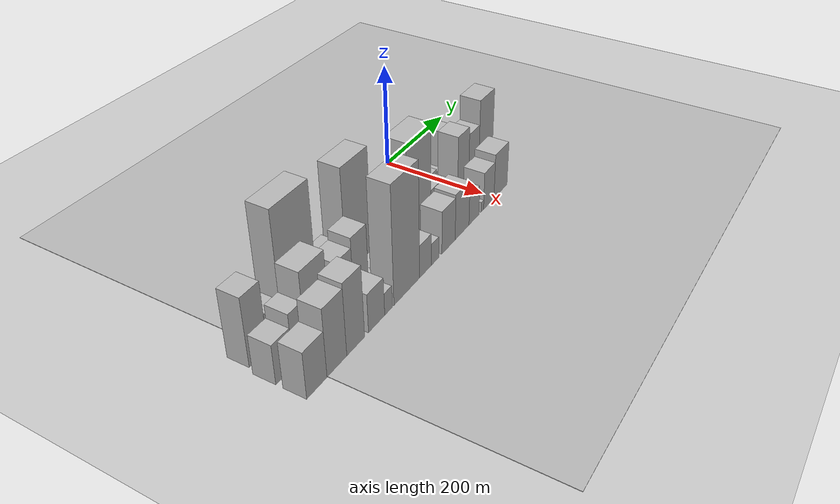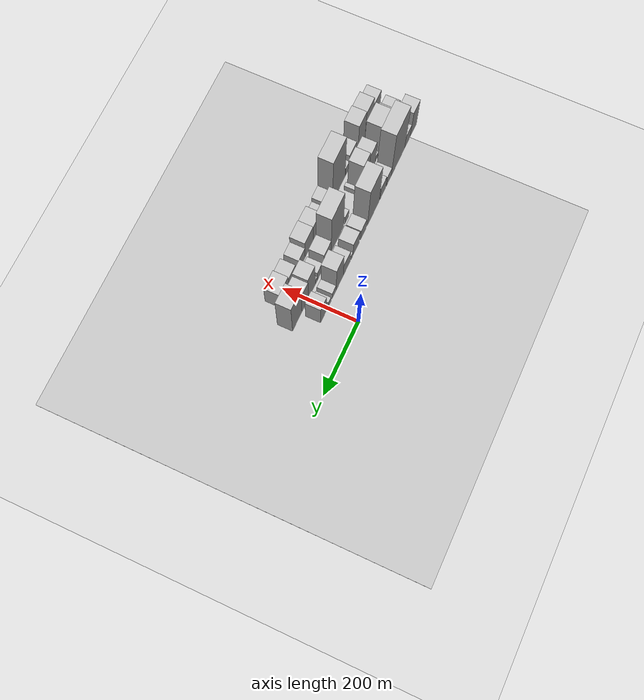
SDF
<sdf version="1.6">
 <world name="default">
  <include><name>ground_plane_1</name><uri>model://HANNAS_ground_plane</uri></include>
  <include>
   <name>ground_plane_2</name>
   <uri>model://HANNAS_ground_plane</uri>
   <pose>100 0 0  0 0 0</pose>
  </include>
  <model name="building_1">
   <static>1</static>
   <pose>100.0000 -520.6424 0 0.000000 0.000000 0.000000</pose>
   <link name="link">
    <pose>0 0 63.00 0 0 0</pose>
    <collision name="collision"><geometry><box><size>40.0000 40.7153 126.0000</size></box></geometry></collision>
    <visual name="visual">
     <cast_shadows>0</cast_shadows>
     <geometry><box><size>40.0000 40.7153 126.0000</size></box></geometry>
     <material>
      <script>
       <uri>model://HANNAS_wall/materials/scripts</uri>
       <uri>model://HANNAS_wall/materials/textures</uri>
       <name>vrc/HANNAS_wall</name>
      </script>
     </material>
    </visual>
   </link>
  </model>
  <model name="building_2">
   <static>1</static>
   <pose>100.0000 -482.6814 0 0.000000 0.000000 0.000000</pose>
   <link name="link">
    <pose>0 0 33.00 0 0 0</pose>
    <collision name="collision"><geometry><box><size>40.0000 35.2066 66.0000</size></box></geometry></collision>
    <visual name="visual">
     <cast_shadows>0</cast_shadows>
     <geometry><box><size>40.0000 35.2066 66.0000</size></box></geometry>
     <material>
      <script>
       <uri>model://HANNAS_wall/materials/scripts</uri>
       <uri>model://HANNAS_wall/materials/textures</uri>
       <name>vrc/HANNAS_wall</name>
      </script>
     </material>
    </visual>
   </link>
  </model>
  <model name="building_3">
   <static>1</static>
   <pose>100.0000 -422.6108 0 0.000000 0.000000 0.000000</pose>
   <link name="link">
    <pose>0 0 111.00 0 0 0</pose>
    <collision name="collision"><geometry><box><size>40.0000 84.9346 222.0000</size></box></geometry></collision>
    <visual name="visual">
     <cast_shadows>0</cast_shadows>
     <geometry><box><size>40.0000 84.9346 222.0000</size></box></geometry>
     <material>
      <script>
       <uri>model://HANNAS_wall/materials/scripts</uri>
       <uri>model://HANNAS_wall/materials/textures</uri>
       <name>vrc/HANNAS_wall</name>
      </script>
     </material>
    </visual>
   </link>
  </model>
  <model name="building_4">
   <static>1</static>
   <pose>100.0000 -365.6427 0 0.000000 0.000000 0.000000</pose>
   <link name="link">
    <pose>0 0 25.50 0 0 0</pose>
    <collision name="collision"><geometry><box><size>40.0000 29.0015 51.0000</size></box></geometry></collision>
    <visual name="visual">
     <cast_shadows>0</cast_shadows>
     <geometry><box><size>40.0000 29.0015 51.0000</size></box></geometry>
     <material>
      <script>
       <uri>model://HANNAS_wall/materials/scripts</uri>
       <uri>model://HANNAS_wall/materials/textures</uri>
       <name>vrc/HANNAS_wall</name>
      </script>
     </material>
    </visual>
   </link>
  </model>
  <model name="building_5">
   <static>1</static>
   <pose>100.0000 -328.3756 0 0.000000 0.000000 0.000000</pose>
   <link name="link">
    <pose>0 0 33.00 0 0 0</pose>
    <collision name="collision"><geometry><box><size>40.0000 35.5327 66.0000</size></box></geometry></collision>
    <visual name="visual">
     <cast_shadows>0</cast_shadows>
     <geometry><box><size>40.0000 35.5327 66.0000</size></box></geometry>
     <material>
      <script>
       <uri>model://HANNAS_wall/materials/scripts</uri>
       <uri>model://HANNAS_wall/materials/textures</uri>
       <name>vrc/HANNAS_wall</name>
      </script>
     </material>
    </visual>
   </link>
  </model>
  <model name="building_6">
   <static>1</static>
   <pose>100.0000 -270.0460 0 0.000000 0.000000 0.000000</pose>
   <link name="link">
    <pose>0 0 99.00 0 0 0</pose>
    <collision name="collision"><geometry><box><size>40.0000 71.1264 198.0000</size></box></geometry></collision>
    <visual name="visual">
     <cast_shadows>0</cast_shadows>
     <geometry><box><size>40.0000 71.1264 198.0000</size></box></geometry>
     <material>
      <script>
       <uri>model://HANNAS_wall/materials/scripts</uri>
       <uri>model://HANNAS_wall/materials/textures</uri>
       <name>vrc/HANNAS_wall</name>
      </script>
     </material>
    </visual>
   </link>
  </model>
  <model name="building_7">
   <static>1</static>
   <pose>100.0000 -209.6957 0 0.000000 0.000000 0.000000</pose>
   <link name="link">
    <pose>0 0 28.50 0 0 0</pose>
    <collision name="collision"><geometry><box><size>40.0000 33.5742 57.0000</size></box></geometry></collision>
    <visual name="visual">
     <cast_shadows>0</cast_shadows>
     <geometry><box><size>40.0000 33.5742 57.0000</size></box></geometry>
     <material>
      <script>
       <uri>model://HANNAS_wall/materials/scripts</uri>
       <uri>model://HANNAS_wall/materials/textures</uri>
       <name>vrc/HANNAS_wall</name>
      </script>
     </material>
    </visual>
   </link>
  </model>
  <model name="building_8">
   <static>1</static>
   <pose>100.0000 -166.0464 0 0.000000 0.000000 0.000000</pose>
   <link name="link">
    <pose>0 0 36.00 0 0 0</pose>
    <collision name="collision"><geometry><box><size>40.0000 37.7243 72.0000</size></box></geometry></collision>
    <visual name="visual">
     <cast_shadows>0</cast_shadows>
     <geometry><box><size>40.0000 37.7243 72.0000</size></box></geometry>
     <material>
      <script>
       <uri>model://HANNAS_wall/materials/scripts</uri>
       <uri>model://HANNAS_wall/materials/textures</uri>
       <name>vrc/HANNAS_wall</name>
      </script>
     </material>
    </visual>
   </link>
  </model>
  <model name="building_9">
   <static>1</static>
   <pose>100.0000 -141.8162 0 0.000000 0.000000 0.000000</pose>
   <link name="link">
    <pose>0 0 12.00 0 0 0</pose>
    <collision name="collision"><geometry><box><size>40.0000 10.7360 24.0000</size></box></geometry></collision>
    <visual name="visual">
     <cast_shadows>0</cast_shadows>
     <geometry><box><size>40.0000 10.7360 24.0000</size></box></geometry>
     <material>
      <script>
       <uri>model://HANNAS_wall/materials/scripts</uri>
       <uri>model://HANNAS_wall/materials/textures</uri>
       <name>vrc/HANNAS_wall</name>
      </script>
     </material>
    </visual>
   </link>
  </model>
  <model name="building_10">
   <static>1</static>
   <pose>100.0000 -110.3357 0 0.000000 0.000000 0.000000</pose>
   <link name="link">
    <pose>0 0 34.50 0 0 0</pose>
    <collision name="collision"><geometry><box><size>40.0000 40.2250 69.0000</size></box></geometry></collision>
    <visual name="visual">
     <cast_shadows>0</cast_shadows>
     <geometry><box><size>40.0000 40.2250 69.0000</size></box></geometry>
     <material>
      <script>
       <uri>model://HANNAS_wall/materials/scripts</uri>
       <uri>model://HANNAS_wall/materials/textures</uri>
       <name>vrc/HANNAS_wall</name>
      </script>
     </material>
    </visual>
   </link>
  </model>
  <model name="building_11">
   <static>1</static>
   <pose>100.0000 -69.0624 0 0.000000 0.000000 0.000000</pose>
   <link name="link">
    <pose>0 0 67.50 0 0 0</pose>
    <collision name="collision"><geometry><box><size>40.0000 42.3215 135.0000</size></box></geometry></collision>
    <visual name="visual">
     <cast_shadows>0</cast_shadows>
     <geometry><box><size>40.0000 42.3215 135.0000</size></box></geometry>
     <material>
      <script>
       <uri>model://HANNAS_wall/materials/scripts</uri>
       <uri>model://HANNAS_wall/materials/textures</uri>
       <name>vrc/HANNAS_wall</name>
      </script>
     </material>
    </visual>
   </link>
  </model>
  <model name="building_12">
   <static>1</static>
   <pose>100.0000 -36.2904 0 0.000000 0.000000 0.000000</pose>
   <link name="link">
    <pose>0 0 19.50 0 0 0</pose>
    <collision name="collision"><geometry><box><size>40.0000 23.2225 39.0000</size></box></geometry></collision>
    <visual name="visual">
     <cast_shadows>0</cast_shadows>
     <geometry><box><size>40.0000 23.2225 39.0000</size></box></geometry>
     <material>
      <script>
       <uri>model://HANNAS_wall/materials/scripts</uri>
       <uri>model://HANNAS_wall/materials/textures</uri>
       <name>vrc/HANNAS_wall</name>
      </script>
     </material>
    </visual>
   </link>
  </model>
  <model name="building_13">
   <static>1</static>
   <pose>100.0000 -11.0439 0 0.000000 0.000000 0.000000</pose>
   <link name="link">
    <pose>0 0 15.00 0 0 0</pose>
    <collision name="collision"><geometry><box><size>40.0000 15.2705 30.0000</size></box></geometry></collision>
    <visual name="visual">
     <cast_shadows>0</cast_shadows>
     <geometry><box><size>40.0000 15.2705 30.0000</size></box></geometry>
     <material>
      <script>
       <uri>model://HANNAS_wall/materials/scripts</uri>
       <uri>model://HANNAS_wall/materials/textures</uri>
       <name>vrc/HANNAS_wall</name>
      </script>
     </material>
    </visual>
   </link>
  </model>
  <model name="building_14">
   <static>1</static>
   <pose>100.0000 23.7268 0 0.000000 0.000000 0.000000</pose>
   <link name="link">
    <pose>0 0 48.00 0 0 0</pose>
    <collision name="collision"><geometry><box><size>40.0000 34.2709 96.0000</size></box></geometry></collision>
    <visual name="visual">
     <cast_shadows>0</cast_shadows>
     <geometry><box><size>40.0000 34.2709 96.0000</size></box></geometry>
     <material>
      <script>
       <uri>model://HANNAS_wall/materials/scripts</uri>
       <uri>model://HANNAS_wall/materials/textures</uri>
       <name>vrc/HANNAS_wall</name>
      </script>
     </material>
    </visual>
   </link>
  </model>
  <model name="building_30">
   <static>1</static>
   <pose>152.0000 -528.5410 0 0.000000 0.000000 0.000000</pose>
   <link name="link">
    <pose>0 0 36.00 0 0 0</pose>
    <collision name="collision"><geometry><box><size>40.0000 38.9179 72.0000</size></box></geometry></collision>
    <visual name="visual">
     <cast_shadows>0</cast_shadows>
     <geometry><box><size>40.0000 38.9179 72.0000</size></box></geometry>
     <material>
      <script>
       <uri>model://HANNAS_wall/materials/scripts</uri>
       <uri>model://HANNAS_wall/materials/textures</uri>
       <name>vrc/HANNAS_wall</name>
      </script>
     </material>
    </visual>
   </link>
  </model>
  <model name="building_31">
   <static>1</static>
   <pose>152.0000 -494.0532 0 0.000000 0.000000 0.000000</pose>
   <link name="link">
    <pose>0 0 48.00 0 0 0</pose>
    <collision name="collision"><geometry><box><size>40.0000 30.0578 96.0000</size></box></geometry></collision>
    <visual name="visual">
     <cast_shadows>0</cast_shadows>
     <geometry><box><size>40.0000 30.0578 96.0000</size></box></geometry>
     <material>
      <script>
       <uri>model://HANNAS_wall/materials/scripts</uri>
       <uri>model://HANNAS_wall/materials/textures</uri>
       <name>vrc/HANNAS_wall</name>
      </script>
     </material>
    </visual>
   </link>
  </model>
  <model name="building_32">
   <static>1</static>
   <pose>152.0000 -450.6741 0 0.000000 0.000000 0.000000</pose>
   <link name="link">
    <pose>0 0 73.50 0 0 0</pose>
    <collision name="collision"><geometry><box><size>40.0000 56.7006 147.0000</size></box></geometry></collision>
    <visual name="visual">
     <cast_shadows>0</cast_shadows>
     <geometry><box><size>40.0000 56.7006 147.0000</size></box></geometry>
     <material>
      <script>
       <uri>model://HANNAS_wall/materials/scripts</uri>
       <uri>model://HANNAS_wall/materials/textures</uri>
       <name>vrc/HANNAS_wall</name>
      </script>
     </material>
    </visual>
   </link>
  </model>
  <model name="building_33">
   <static>1</static>
   <pose>152.0000 -417.8523 0 0.000000 0.000000 0.000000</pose>
   <link name="link">
    <pose>0 0 9.00 0 0 0</pose>
    <collision name="collision"><geometry><box><size>40.0000 8.9429 18.0000</size></box></geometry></collision>
    <visual name="visual">
     <cast_shadows>0</cast_shadows>
     <geometry><box><size>40.0000 8.9429 18.0000</size></box></geometry>
     <material>
      <script>
       <uri>model://HANNAS_wall/materials/scripts</uri>
       <uri>model://HANNAS_wall/materials/textures</uri>
       <name>vrc/HANNAS_wall</name>
      </script>
     </material>
    </visual>
   </link>
  </model>
  <model name="building_34">
   <static>1</static>
   <pose>152.0000 -407.1909 0 0.000000 0.000000 0.000000</pose>
   <link name="link">
    <pose>0 0 13.50 0 0 0</pose>
    <collision name="collision"><geometry><box><size>40.0000 12.3799 27.0000</size></box></geometry></collision>
    <visual name="visual">
     <cast_shadows>0</cast_shadows>
     <geometry><box><size>40.0000 12.3799 27.0000</size></box></geometry>
     <material>
      <script>
       <uri>model://HANNAS_wall/materials/scripts</uri>
       <uri>model://HANNAS_wall/materials/textures</uri>
       <name>vrc/HANNAS_wall</name>
      </script>
     </material>
    </visual>
   </link>
  </model>
  <model name="building_35">
   <static>1</static>
   <pose>152.0000 -380.6003 0 0.000000 0.000000 0.000000</pose>
   <link name="link">
    <pose>0 0 54.00 0 0 0</pose>
    <collision name="collision"><geometry><box><size>40.0000 40.8014 108.0000</size></box></geometry></collision>
    <visual name="visual">
     <cast_shadows>0</cast_shadows>
     <geometry><box><size>40.0000 40.8014 108.0000</size></box></geometry>
     <material>
      <script>
       <uri>model://HANNAS_wall/materials/scripts</uri>
       <uri>model://HANNAS_wall/materials/textures</uri>
       <name>vrc/HANNAS_wall</name>
      </script>
     </material>
    </visual>
   </link>
  </model>
  <model name="building_36">
   <static>1</static>
   <pose>152.0000 -340.1118 0 0.000000 0.000000 0.000000</pose>
   <link name="link">
    <pose>0 0 63.00 0 0 0</pose>
    <collision name="collision"><geometry><box><size>40.0000 40.1756 126.0000</size></box></geometry></collision>
    <visual name="visual">
     <cast_shadows>0</cast_shadows>
     <geometry><box><size>40.0000 40.1756 126.0000</size></box></geometry>
     <material>
      <script>
       <uri>model://HANNAS_wall/materials/scripts</uri>
       <uri>model://HANNAS_wall/materials/textures</uri>
       <name>vrc/HANNAS_wall</name>
      </script>
     </material>
    </visual>
   </link>
  </model>
  <model name="building_37">
   <static>1</static>
   <pose>152.0000 -304.2109 0 0.000000 0.000000 0.000000</pose>
   <link name="link">
    <pose>0 0 12.00 0 0 0</pose>
    <collision name="collision"><geometry><box><size>40.0000 11.6261 24.0000</size></box></geometry></collision>
    <visual name="visual">
     <cast_shadows>0</cast_shadows>
     <geometry><box><size>40.0000 11.6261 24.0000</size></box></geometry>
     <material>
      <script>
       <uri>model://HANNAS_wall/materials/scripts</uri>
       <uri>model://HANNAS_wall/materials/textures</uri>
       <name>vrc/HANNAS_wall</name>
      </script>
     </material>
    </visual>
   </link>
  </model>
  <model name="building_38">
   <static>1</static>
   <pose>152.0000 -226.7665 0 0.000000 0.000000 0.000000</pose>
   <link name="link">
    <pose>0 0 21.00 0 0 0</pose>
    <collision name="collision"><geometry><box><size>40.0000 22.4209 42.0000</size></box></geometry></collision>
    <visual name="visual">
     <cast_shadows>0</cast_shadows>
     <geometry><box><size>40.0000 22.4209 42.0000</size></box></geometry>
     <material>
      <script>
       <uri>model://HANNAS_wall/materials/scripts</uri>
       <uri>model://HANNAS_wall/materials/textures</uri>
       <name>vrc/HANNAS_wall</name>
      </script>
     </material>
    </visual>
   </link>
  </model>
  <model name="building_39">
   <static>1</static>
   <pose>152.0000 -170.0269 0 0.000000 0.000000 0.000000</pose>
   <link name="link">
    <pose>0 0 102.00 0 0 0</pose>
    <collision name="collision"><geometry><box><size>40.0000 73.0582 204.0000</size></box></geometry></collision>
    <visual name="visual">
     <cast_shadows>0</cast_shadows>
     <geometry><box><size>40.0000 73.0582 204.0000</size></box></geometry>
     <material>
      <script>
       <uri>model://HANNAS_wall/materials/scripts</uri>
       <uri>model://HANNAS_wall/materials/textures</uri>
       <name>vrc/HANNAS_wall</name>
      </script>
     </material>
    </visual>
   </link>
  </model>
  <model name="building_40">
   <static>1</static>
   <pose>152.0000 -112.7403 0 0.000000 0.000000 0.000000</pose>
   <link name="link">
    <pose>0 0 37.50 0 0 0</pose>
    <collision name="collision"><geometry><box><size>40.0000 41.5151 75.0000</size></box></geometry></collision>
    <visual name="visual">
     <cast_shadows>0</cast_shadows>
     <geometry><box><size>40.0000 41.5151 75.0000</size></box></geometry>
     <material>
      <script>
       <uri>model://HANNAS_wall/materials/scripts</uri>
       <uri>model://HANNAS_wall/materials/textures</uri>
       <name>vrc/HANNAS_wall</name>
      </script>
     </material>
    </visual>
   </link>
  </model>
  <model name="building_41">
   <static>1</static>
   <pose>152.0000 -67.6886 0 0.000000 0.000000 0.000000</pose>
   <link name="link">
    <pose>0 0 25.50 0 0 0</pose>
    <collision name="collision"><geometry><box><size>40.0000 28.5882 51.0000</size></box></geometry></collision>
    <visual name="visual">
     <cast_shadows>0</cast_shadows>
     <geometry><box><size>40.0000 28.5882 51.0000</size></box></geometry>
     <material>
      <script>
       <uri>model://HANNAS_wall/materials/scripts</uri>
       <uri>model://HANNAS_wall/materials/textures</uri>
       <name>vrc/HANNAS_wall</name>
      </script>
     </material>
    </visual>
   </link>
  </model>
  <model name="building_42">
   <static>1</static>
   <pose>152.0000 -47.5495 0 0.000000 0.000000 0.000000</pose>
   <link name="link">
    <pose>0 0 13.50 0 0 0</pose>
    <collision name="collision"><geometry><box><size>40.0000 11.6902 27.0000</size></box></geometry></collision>
    <visual name="visual">
     <cast_shadows>0</cast_shadows>
     <geometry><box><size>40.0000 11.6902 27.0000</size></box></geometry>
     <material>
      <script>
       <uri>model://HANNAS_wall/materials/scripts</uri>
       <uri>model://HANNAS_wall/materials/textures</uri>
       <name>vrc/HANNAS_wall</name>
      </script>
     </material>
    </visual>
   </link>
  </model>
  <model name="building_43">
   <static>1</static>
   <pose>152.0000 -21.8932 0 0.000000 0.000000 0.000000</pose>
   <link name="link">
    <pose>0 0 64.50 0 0 0</pose>
    <collision name="collision"><geometry><box><size>40.0000 39.6225 129.0000</size></box></geometry></collision>
    <visual name="visual">
     <cast_shadows>0</cast_shadows>
     <geometry><box><size>40.0000 39.6225 129.0000</size></box></geometry>
     <material>
      <script>
       <uri>model://HANNAS_wall/materials/scripts</uri>
       <uri>model://HANNAS_wall/materials/textures</uri>
       <name>vrc/HANNAS_wall</name>
      </script>
     </material>
    </visual>
   </link>
  </model>
  <model name="building_44">
   <static>1</static>
   <pose>152.0000 16.5886 0 0.000000 0.000000 0.000000</pose>
   <link name="link">
    <pose>0 0 57.00 0 0 0</pose>
    <collision name="collision"><geometry><box><size>40.0000 37.3410 114.0000</size></box></geometry></collision>
    <visual name="visual">
     <cast_shadows>0</cast_shadows>
     <geometry><box><size>40.0000 37.3410 114.0000</size></box></geometry>
     <material>
      <script>
       <uri>model://HANNAS_wall/materials/scripts</uri>
       <uri>model://HANNAS_wall/materials/textures</uri>
       <name>vrc/HANNAS_wall</name>
      </script>
     </material>
    </visual>
   </link>
  </model>
  <model name="building_45">
   <static>1</static>
   <pose>152.0000 61.5552 0 0.000000 0.000000 0.000000</pose>
   <link name="link">
    <pose>0 0 81.00 0 0 0</pose>
    <collision name="collision"><geometry><box><size>40.0000 52.5924 162.0000</size></box></geometry></collision>
    <visual name="visual">
     <cast_shadows>0</cast_shadows>
     <geometry><box><size>40.0000 52.5924 162.0000</size></box></geometry>
     <material>
      <script>
       <uri>model://HANNAS_wall/materials/scripts</uri>
       <uri>model://HANNAS_wall/materials/textures</uri>
       <name>vrc/HANNAS_wall</name>
      </script>
     </material>
    </visual>
   </link>
  </model>
  <model name="building_59">
   <static>1</static>
   <pose>204.0000 -524.8716 0 0.000000 0.000000 0.000000</pose>
   <link name="link">
    <pose>0 0 42.00 0 0 0</pose>
    <collision name="collision"><geometry><box><size>40.0000 46.2568 84.0000</size></box></geometry></collision>
    <visual name="visual">
     <cast_shadows>0</cast_shadows>
     <geometry><box><size>40.0000 46.2568 84.0000</size></box></geometry>
     <material>
      <script>
       <uri>model://HANNAS_wall/materials/scripts</uri>
       <uri>model://HANNAS_wall/materials/textures</uri>
       <name>vrc/HANNAS_wall</name>
      </script>
     </material>
    </visual>
   </link>
  </model>
  <model name="building_60">
   <static>1</static>
   <pose>204.0000 -478.0868 0 0.000000 0.000000 0.000000</pose>
   <link name="link">
    <pose>0 0 61.50 0 0 0</pose>
    <collision name="collision"><geometry><box><size>40.0000 47.3126 123.0000</size></box></geometry></collision>
    <visual name="visual">
     <cast_shadows>0</cast_shadows>
     <geometry><box><size>40.0000 47.3126 123.0000</size></box></geometry>
     <material>
      <script>
       <uri>model://HANNAS_wall/materials/scripts</uri>
       <uri>model://HANNAS_wall/materials/textures</uri>
       <name>vrc/HANNAS_wall</name>
      </script>
     </material>
    </visual>
   </link>
  </model>
  <model name="building_61">
   <static>1</static>
   <pose>204.0000 -431.9752 0 0.000000 0.000000 0.000000</pose>
   <link name="link">
    <pose>0 0 66.00 0 0 0</pose>
    <collision name="collision"><geometry><box><size>40.0000 44.9107 132.0000</size></box></geometry></collision>
    <visual name="visual">
     <cast_shadows>0</cast_shadows>
     <geometry><box><size>40.0000 44.9107 132.0000</size></box></geometry>
     <material>
      <script>
       <uri>model://HANNAS_wall/materials/scripts</uri>
       <uri>model://HANNAS_wall/materials/textures</uri>
       <name>vrc/HANNAS_wall</name>
      </script>
     </material>
    </visual>
   </link>
  </model>
  <model name="building_62">
   <static>1</static>
   <pose>204.0000 -377.9661 0 0.000000 0.000000 0.000000</pose>
   <link name="link">
    <pose>0 0 36.00 0 0 0</pose>
    <collision name="collision"><geometry><box><size>40.0000 43.1076 72.0000</size></box></geometry></collision>
    <visual name="visual">
     <cast_shadows>0</cast_shadows>
     <geometry><box><size>40.0000 43.1076 72.0000</size></box></geometry>
     <material>
      <script>
       <uri>model://HANNAS_wall/materials/scripts</uri>
       <uri>model://HANNAS_wall/materials/textures</uri>
       <name>vrc/HANNAS_wall</name>
      </script>
     </material>
    </visual>
   </link>
  </model>
  <model name="building_63">
   <static>1</static>
   <pose>204.0000 -345.7187 0 0.000000 0.000000 0.000000</pose>
   <link name="link">
    <pose>0 0 21.00 0 0 0</pose>
    <collision name="collision"><geometry><box><size>40.0000 21.3872 42.0000</size></box></geometry></collision>
    <visual name="visual">
     <cast_shadows>0</cast_shadows>
     <geometry><box><size>40.0000 21.3872 42.0000</size></box></geometry>
     <material>
      <script>
       <uri>model://HANNAS_wall/materials/scripts</uri>
       <uri>model://HANNAS_wall/materials/textures</uri>
       <name>vrc/HANNAS_wall</name>
      </script>
     </material>
    </visual>
   </link>
  </model>
  <model name="building_64">
   <static>1</static>
   <pose>204.0000 -293.5544 0 0.000000 0.000000 0.000000</pose>
   <link name="link">
    <pose>0 0 109.50 0 0 0</pose>
    <collision name="collision"><geometry><box><size>40.0000 74.9416 219.0000</size></box></geometry></collision>
    <visual name="visual">
     <cast_shadows>0</cast_shadows>
     <geometry><box><size>40.0000 74.9416 219.0000</size></box></geometry>
     <material>
      <script>
       <uri>model://HANNAS_wall/materials/scripts</uri>
       <uri>model://HANNAS_wall/materials/textures</uri>
       <name>vrc/HANNAS_wall</name>
      </script>
     </material>
    </visual>
   </link>
  </model>
  <model name="building_65">
   <static>1</static>
   <pose>204.0000 -238.1037 0 0.000000 0.000000 0.000000</pose>
   <link name="link">
    <pose>0 0 31.50 0 0 0</pose>
    <collision name="collision"><geometry><box><size>40.0000 35.9597 63.0000</size></box></geometry></collision>
    <visual name="visual">
     <cast_shadows>0</cast_shadows>
     <geometry><box><size>40.0000 35.9597 63.0000</size></box></geometry>
     <material>
      <script>
       <uri>model://HANNAS_wall/materials/scripts</uri>
       <uri>model://HANNAS_wall/materials/textures</uri>
       <name>vrc/HANNAS_wall</name>
      </script>
     </material>
    </visual>
   </link>
  </model>
  <model name="building_66">
   <static>1</static>
   <pose>204.0000 -208.4638 0 0.000000 0.000000 0.000000</pose>
   <link name="link">
    <pose>0 0 21.00 0 0 0</pose>
    <collision name="collision"><geometry><box><size>40.0000 23.3202 42.0000</size></box></geometry></collision>
    <visual name="visual">
     <cast_shadows>0</cast_shadows>
     <geometry><box><size>40.0000 23.3202 42.0000</size></box></geometry>
     <material>
      <script>
       <uri>model://HANNAS_wall/materials/scripts</uri>
       <uri>model://HANNAS_wall/materials/textures</uri>
       <name>vrc/HANNAS_wall</name>
      </script>
     </material>
    </visual>
   </link>
  </model>
  <model name="building_67">
   <static>1</static>
   <pose>204.0000 -164.8401 0 0.000000 0.000000 0.000000</pose>
   <link name="link">
    <pose>0 0 42.00 0 0 0</pose>
    <collision name="collision"><geometry><box><size>40.0000 43.9272 84.0000</size></box></geometry></collision>
    <visual name="visual">
     <cast_shadows>0</cast_shadows>
     <geometry><box><size>40.0000 43.9272 84.0000</size></box></geometry>
     <material>
      <script>
       <uri>model://HANNAS_wall/materials/scripts</uri>
       <uri>model://HANNAS_wall/materials/textures</uri>
       <name>vrc/HANNAS_wall</name>
      </script>
     </material>
    </visual>
   </link>
  </model>
  <model name="building_68">
   <static>1</static>
   <pose>204.0000 -119.2005 0 0.000000 0.000000 0.000000</pose>
   <link name="link">
    <pose>0 0 45.00 0 0 0</pose>
    <collision name="collision"><geometry><box><size>40.0000 47.3522 90.0000</size></box></geometry></collision>
    <visual name="visual">
     <cast_shadows>0</cast_shadows>
     <geometry><box><size>40.0000 47.3522 90.0000</size></box></geometry>
     <material>
      <script>
       <uri>model://HANNAS_wall/materials/scripts</uri>
       <uri>model://HANNAS_wall/materials/textures</uri>
       <name>vrc/HANNAS_wall</name>
      </script>
     </material>
    </visual>
   </link>
  </model>
  <model name="building_69">
   <static>1</static>
   <pose>204.0000 -77.7665 0 0.000000 0.000000 0.000000</pose>
   <link name="link">
    <pose>0 0 30.00 0 0 0</pose>
    <collision name="collision"><geometry><box><size>40.0000 35.5157 60.0000</size></box></geometry></collision>
    <visual name="visual">
     <cast_shadows>0</cast_shadows>
     <geometry><box><size>40.0000 35.5157 60.0000</size></box></geometry>
     <material>
      <script>
       <uri>model://HANNAS_wall/materials/scripts</uri>
       <uri>model://HANNAS_wall/materials/textures</uri>
       <name>vrc/HANNAS_wall</name>
      </script>
     </material>
    </visual>
   </link>
  </model>
  <model name="building_70">
   <static>1</static>
   <pose>204.0000 -47.5701 0 0.000000 0.000000 0.000000</pose>
   <link name="link">
    <pose>0 0 10.50 0 0 0</pose>
    <collision name="collision"><geometry><box><size>40.0000 8.8772 21.0000</size></box></geometry></collision>
    <visual name="visual">
     <cast_shadows>0</cast_shadows>
     <geometry><box><size>40.0000 8.8772 21.0000</size></box></geometry>
     <material>
      <script>
       <uri>model://HANNAS_wall/materials/scripts</uri>
       <uri>model://HANNAS_wall/materials/textures</uri>
       <name>vrc/HANNAS_wall</name>
      </script>
     </material>
    </visual>
   </link>
  </model>
  <model name="building_71">
   <static>1</static>
   <pose>204.0000 -23.5386 0 0.000000 0.000000 0.000000</pose>
   <link name="link">
    <pose>0 0 37.50 0 0 0</pose>
    <collision name="collision"><geometry><box><size>40.0000 39.1857 75.0000</size></box></geometry></collision>
    <visual name="visual">
     <cast_shadows>0</cast_shadows>
     <geometry><box><size>40.0000 39.1857 75.0000</size></box></geometry>
     <material>
      <script>
       <uri>model://HANNAS_wall/materials/scripts</uri>
       <uri>model://HANNAS_wall/materials/textures</uri>
       <name>vrc/HANNAS_wall</name>
      </script>
     </material>
    </visual>
   </link>
  </model>
  <model name="building_72">
   <static>1</static>
   <pose>204.0000 21.3669 0 0.000000 0.000000 0.000000</pose>
   <link name="link">
    <pose>0 0 45.00 0 0 0</pose>
    <collision name="collision"><geometry><box><size>40.0000 50.6254 90.0000</size></box></geometry></collision>
    <visual name="visual">
     <cast_shadows>0</cast_shadows>
     <geometry><box><size>40.0000 50.6254 90.0000</size></box></geometry>
     <material>
      <script>
       <uri>model://HANNAS_wall/materials/scripts</uri>
       <uri>model://HANNAS_wall/materials/textures</uri>
       <name>vrc/HANNAS_wall</name>
      </script>
     </material>
    </visual>
   </link>
  </model>
 </world>
</sdf>
